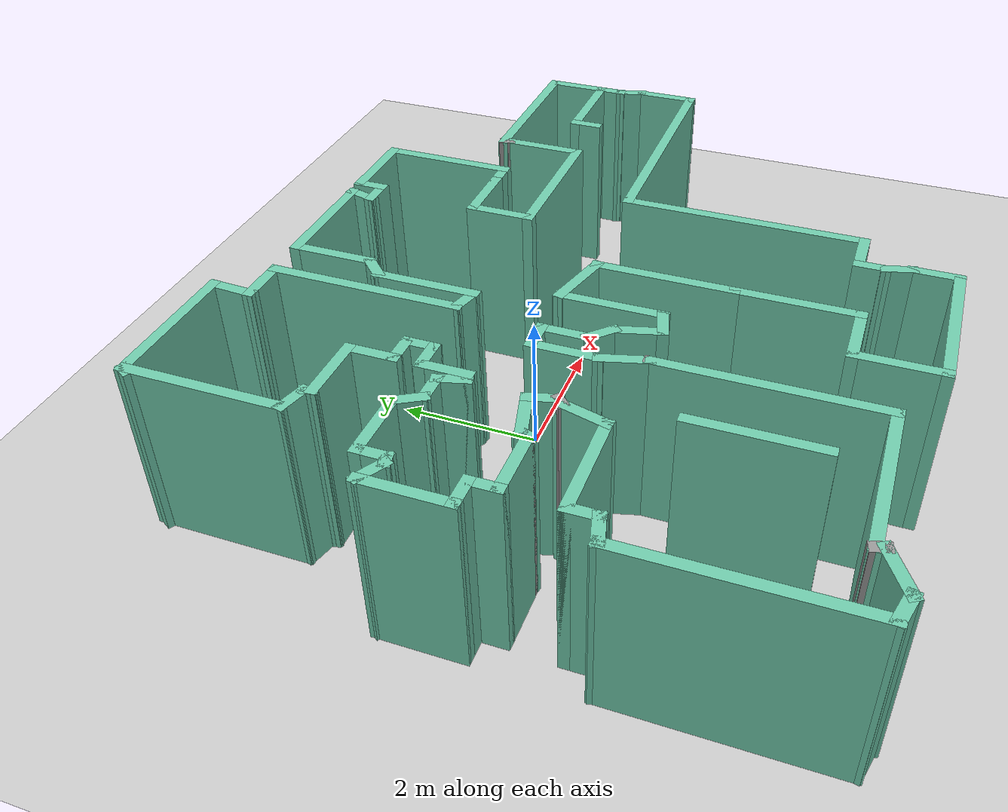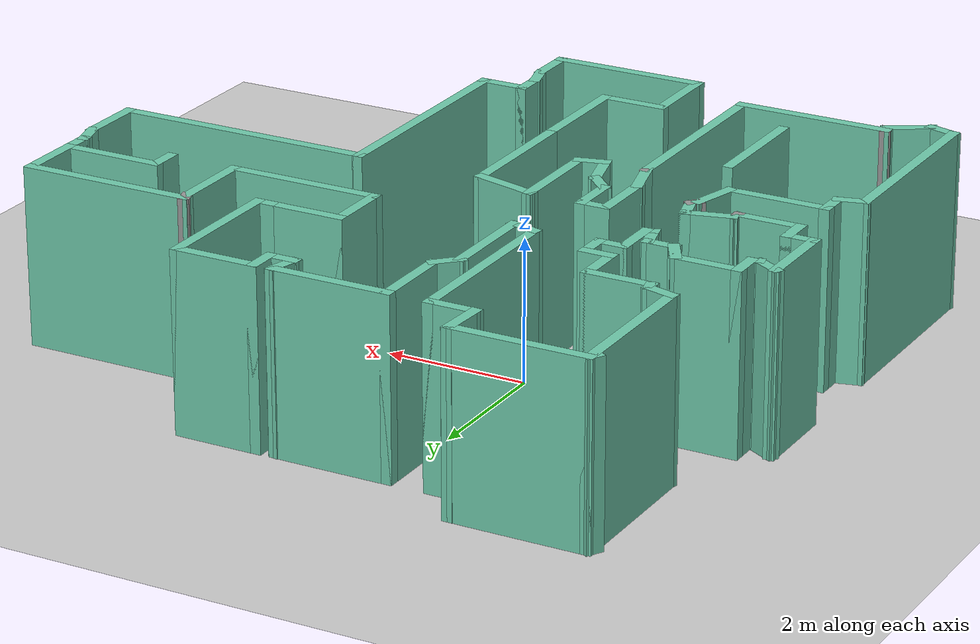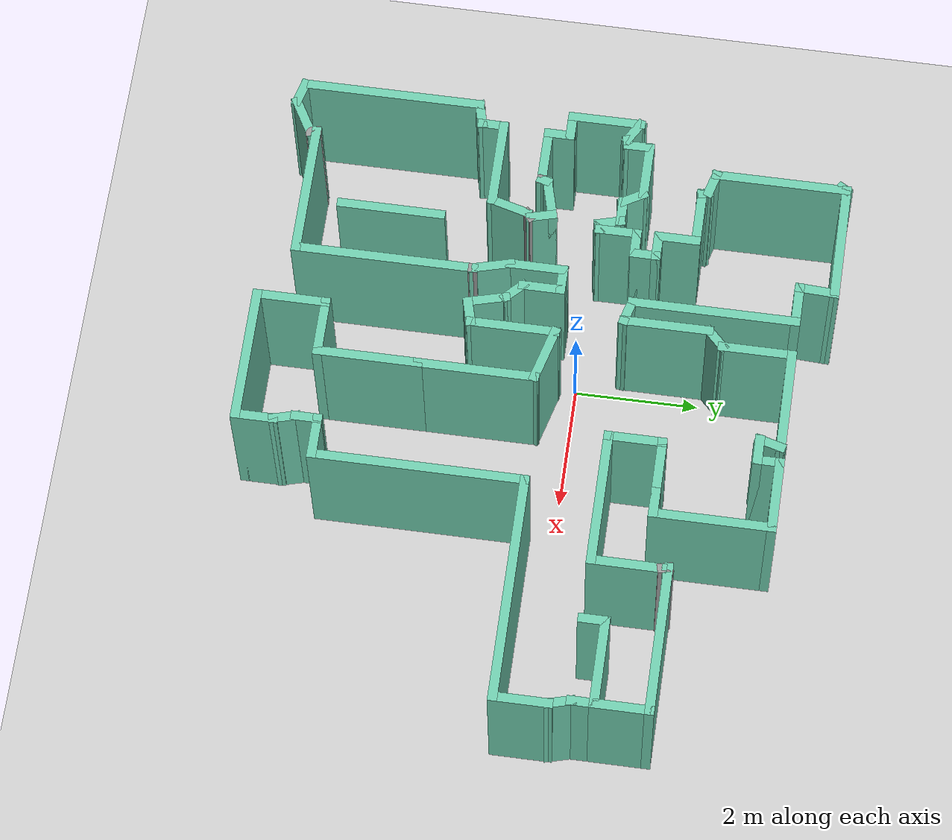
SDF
<sdf version="1.7">
 <world name="default">
  <model name="ground_plane">
   <static>1</static>
   <link name="link">
    <collision name="collision">
     <geometry><plane><normal>0 0 1</normal><size>100 100</size></plane></geometry>
     <surface>
      <contact><collide_bitmask>65535</collide_bitmask></contact>
      <friction><ode><mu>100</mu><mu2>50</mu2></ode></friction>
     </surface>
    </collision>
    <visual name="visual">
     <cast_shadows>0</cast_shadows>
     <geometry><plane><normal>0 0 1</normal><size>100 100</size></plane></geometry>
     <material>
      <script><uri>file://media/materials/scripts/gazebo.material</uri><name>Gazebo/Grey</name></script>
     </material>
    </visual>
   </link>
  </model>
  <model name="map_15">
   <pose>1.26568 -0.54548 0 0 -0 0</pose>
   <link name="Wall_0">
    <collision name="Wall_0_Collision">
     <geometry><box><size>2 0.15 2.5</size></box></geometry>
     <pose>0 0 1.25 0 -0 0</pose>
    </collision>
    <visual name="Wall_0_Visual">
     <pose>0 0 1.25 0 -0 0</pose>
     <geometry><box><size>2 0.15 2.5</size></box></geometry>
     <material>
      <script><uri>file://media/materials/scripts/gazebo.material</uri><name>Gazebo/Grey</name></script>
      <ambient>0.435294 0.796078 0.67451 1</ambient>
     </material>
     <meta><layer>0</layer></meta>
    </visual>
    <pose>-3.33293 4.52162 0 0 -0 3.14159</pose>
   </link>
   <link name="Wall_1">
    <collision name="Wall_1_Collision">
     <geometry><box><size>0.25 0.15 2.5</size></box></geometry>
     <pose>0 0 1.25 0 -0 0</pose>
    </collision>
    <visual name="Wall_1_Visual">
     <pose>0 0 1.25 0 -0 0</pose>
     <geometry><box><size>0.25 0.15 2.5</size></box></geometry>
     <material>
      <script><uri>file://media/materials/scripts/gazebo.material</uri><name>Gazebo/Grey</name></script>
      <ambient>0.435294 0.796078 0.67451 1</ambient>
     </material>
     <meta><layer>0</layer></meta>
    </visual>
    <pose>-4.28293 4.47832 0 0 -0 -2.0944</pose>
   </link>
   <link name="Wall_100">
    <collision name="Wall_100_Collision">
     <geometry><box><size>0.710657 0.15 2.5</size></box></geometry>
     <pose>0 0 1.25 0 -0 0</pose>
    </collision>
    <visual name="Wall_100_Visual">
     <pose>0 0 1.25 0 -0 0</pose>
     <geometry><box><size>0.710657 0.15 2.5</size></box></geometry>
     <material>
      <script><uri>file://media/materials/scripts/gazebo.material</uri><name>Gazebo/Grey</name></script>
      <ambient>0.435294 0.796078 0.67451 1</ambient>
     </material>
     <meta><layer>0</layer></meta>
    </visual>
    <pose>-2.42185 4.24164 0 0 -0 1.52113</pose>
   </link>
   <link name="Wall_102">
    <collision name="Wall_102_Collision">
     <geometry><box><size>1.5 0.15 2.5</size></box></geometry>
     <pose>0 0 1.25 0 -0 0</pose>
    </collision>
    <visual name="Wall_102_Visual">
     <pose>0 0 1.25 0 -0 0</pose>
     <geometry><box><size>1.5 0.15 2.5</size></box></geometry>
     <material>
      <script><uri>file://media/materials/scripts/gazebo.material</uri><name>Gazebo/Grey</name></script>
      <ambient>0.435294 0.796078 0.67451 1</ambient>
     </material>
     <meta><layer>0</layer></meta>
    </visual>
    <pose>4.25832 1.62708 0 0 -0 3.14159</pose>
   </link>
   <link name="Wall_103">
    <collision name="Wall_103_Collision">
     <geometry><box><size>0.5 0.15 2.5</size></box></geometry>
     <pose>0 0 1.25 0 -0 0</pose>
    </collision>
    <visual name="Wall_103_Visual">
     <pose>0 0 1.25 0 -0 0</pose>
     <geometry><box><size>0.5 0.15 2.5</size></box></geometry>
     <material>
      <script><uri>file://media/materials/scripts/gazebo.material</uri><name>Gazebo/Grey</name></script>
      <ambient>0.435294 0.796078 0.67451 1</ambient>
     </material>
     <meta><layer>0</layer></meta>
    </visual>
    <pose>3.58332 1.45208 0 0 -0 -1.5708</pose>
   </link>
   <link name="Wall_105">
    <collision name="Wall_105_Collision">
     <geometry><box><size>1.75 0.15 2.5</size></box></geometry>
     <pose>0 0 1.25 0 -0 0</pose>
    </collision>
    <visual name="Wall_105_Visual">
     <pose>0 0 1.25 0 -0 0</pose>
     <geometry><box><size>1.75 0.15 2.5</size></box></geometry>
     <material>
      <script><uri>file://media/materials/scripts/gazebo.material</uri><name>Gazebo/Grey</name></script>
      <ambient>0.435294 0.796078 0.67451 1</ambient>
     </material>
     <meta><layer>0</layer></meta>
    </visual>
    <pose>-2.96444 -2.66871 0 0 -0 -1.5708</pose>
   </link>
   <link name="Wall_14">
    <collision name="Wall_14_Collision">
     <geometry><box><size>0.5 0.15 2.5</size></box></geometry>
     <pose>0 0 1.25 0 -0 0</pose>
    </collision>
    <visual name="Wall_14_Visual">
     <pose>0 0 1.25 0 -0 0</pose>
     <geometry><box><size>0.5 0.15 2.5</size></box></geometry>
     <material>
      <script><uri>file://media/materials/scripts/gazebo.material</uri><name>Gazebo/Grey</name></script>
      <ambient>0.435294 0.796078 0.67451 1</ambient>
     </material>
     <meta><layer>0</layer></meta>
    </visual>
    <pose>-2.86898 1.63444 0 0 -0 0</pose>
   </link>
   <link name="Wall_17">
    <collision name="Wall_17_Collision">
     <geometry><box><size>0.5 0.15 2.5</size></box></geometry>
     <pose>0 0 1.25 0 -0 0</pose>
    </collision>
    <visual name="Wall_17_Visual">
     <pose>0 0 1.25 0 -0 0</pose>
     <geometry><box><size>0.5 0.15 2.5</size></box></geometry>
     <material>
      <script><uri>file://media/materials/scripts/gazebo.material</uri><name>Gazebo/Grey</name></script>
      <ambient>0.435294 0.796078 0.67451 1</ambient>
     </material>
     <meta><layer>0</layer></meta>
    </visual>
    <pose>-2.69398 1.45944 0 0 -0 -1.5708</pose>
   </link>
   <link name="Wall_18">
    <collision name="Wall_18_Collision">
     <geometry><box><size>0.5 0.15 2.5</size></box></geometry>
     <pose>0 0 1.25 0 -0 0</pose>
    </collision>
    <visual name="Wall_18_Visual">
     <pose>0 0 1.25 0 -0 0</pose>
     <geometry><box><size>0.5 0.15 2.5</size></box></geometry>
     <material>
      <script><uri>file://media/materials/scripts/gazebo.material</uri><name>Gazebo/Grey</name></script>
      <ambient>0.435294 0.796078 0.67451 1</ambient>
     </material>
     <meta><layer>0</layer></meta>
    </visual>
    <pose>-2.86898 1.28444 0 0 -0 3.14159</pose>
   </link>
   <link name="Wall_19">
    <collision name="Wall_19_Collision">
     <geometry><box><size>0.75 0.15 2.5</size></box></geometry>
     <pose>0 0 1.25 0 -0 0</pose>
    </collision>
    <visual name="Wall_19_Visual">
     <pose>0 0 1.25 0 -0 0</pose>
     <geometry><box><size>0.75 0.15 2.5</size></box></geometry>
     <material>
      <script><uri>file://media/materials/scripts/gazebo.material</uri><name>Gazebo/Grey</name></script>
      <ambient>0.435294 0.796078 0.67451 1</ambient>
     </material>
     <meta><layer>0</layer></meta>
    </visual>
    <pose>-3.04398 0.984442 0 0 -0 -1.5708</pose>
   </link>
   <link name="Wall_20">
    <collision name="Wall_20_Collision">
     <geometry><box><size>0.25 0.15 2.5</size></box></geometry>
     <pose>0 0 1.25 0 -0 0</pose>
    </collision>
    <visual name="Wall_20_Visual">
     <pose>0 0 1.25 0 -0 0</pose>
     <geometry><box><size>0.25 0.15 2.5</size></box></geometry>
     <material>
      <script><uri>file://media/materials/scripts/gazebo.material</uri><name>Gazebo/Grey</name></script>
      <ambient>0.435294 0.796078 0.67451 1</ambient>
     </material>
     <meta><layer>0</layer></meta>
    </visual>
    <pose>-3.09227 0.671501 0 0 -0 -2.87979</pose>
   </link>
   <link name="Wall_21">
    <collision name="Wall_21_Collision">
     <geometry><box><size>0.5 0.15 2.5</size></box></geometry>
     <pose>0 0 1.25 0 -0 0</pose>
    </collision>
    <visual name="Wall_21_Visual">
     <pose>0 0 1.25 0 -0 0</pose>
     <geometry><box><size>0.5 0.15 2.5</size></box></geometry>
     <material>
      <script><uri>file://media/materials/scripts/gazebo.material</uri><name>Gazebo/Grey</name></script>
      <ambient>0.435294 0.796078 0.67451 1</ambient>
     </material>
     <meta><layer>0</layer></meta>
    </visual>
    <pose>-3.18586 0.827597 0 0 -0 1.8326</pose>
   </link>
   <link name="Wall_22">
    <collision name="Wall_22_Collision">
     <geometry><box><size>0.5 0.15 2.5</size></box></geometry>
     <pose>0 0 1.25 0 -0 0</pose>
    </collision>
    <visual name="Wall_22_Visual">
     <pose>0 0 1.25 0 -0 0</pose>
     <geometry><box><size>0.5 0.15 2.5</size></box></geometry>
     <material>
      <script><uri>file://media/materials/scripts/gazebo.material</uri><name>Gazebo/Grey</name></script>
      <ambient>0.435294 0.796078 0.67451 1</ambient>
     </material>
     <meta><layer>0</layer></meta>
    </visual>
    <pose>-3.40616 0.996634 0 0 -0 3.14159</pose>
   </link>
   <link name="Wall_23">
    <collision name="Wall_23_Collision">
     <geometry><box><size>0.5 0.15 2.5</size></box></geometry>
     <pose>0 0 1.25 0 -0 0</pose>
    </collision>
    <visual name="Wall_23_Visual">
     <pose>0 0 1.25 0 -0 0</pose>
     <geometry><box><size>0.5 0.15 2.5</size></box></geometry>
     <material>
      <script><uri>file://media/materials/scripts/gazebo.material</uri><name>Gazebo/Grey</name></script>
      <ambient>0.435294 0.796078 0.67451 1</ambient>
     </material>
     <meta><layer>0</layer></meta>
    </visual>
    <pose>-3.66866 1.14819 0 0 -0 2.0944</pose>
   </link>
   <link name="Wall_24">
    <collision name="Wall_24_Collision">
     <geometry><box><size>1 0.15 2.5</size></box></geometry>
     <pose>0 0 1.25 0 -0 0</pose>
    </collision>
    <visual name="Wall_24_Visual">
     <pose>0 0 1.25 0 -0 0</pose>
     <geometry><box><size>1 0.15 2.5</size></box></geometry>
     <material>
      <script><uri>file://media/materials/scripts/gazebo.material</uri><name>Gazebo/Grey</name></script>
      <ambient>0.435294 0.796078 0.67451 1</ambient>
     </material>
     <meta><layer>0</layer></meta>
    </visual>
    <pose>-4.18116 1.29974 0 0 -0 3.14159</pose>
   </link>
   <link name="Wall_25">
    <collision name="Wall_25_Collision">
     <geometry><box><size>0.5 0.15 2.5</size></box></geometry>
     <pose>0 0 1.25 0 -0 0</pose>
    </collision>
    <visual name="Wall_25_Visual">
     <pose>0 0 1.25 0 -0 0</pose>
     <geometry><box><size>0.5 0.15 2.5</size></box></geometry>
     <material>
      <script><uri>file://media/materials/scripts/gazebo.material</uri><name>Gazebo/Grey</name></script>
      <ambient>0.435294 0.796078 0.67451 1</ambient>
     </material>
     <meta><layer>0</layer></meta>
    </visual>
    <pose>-4.60616 1.12474 0 0 -0 -1.5708</pose>
   </link>
   <link name="Wall_26">
    <collision name="Wall_26_Collision">
     <geometry><box><size>0.25 0.15 2.5</size></box></geometry>
     <pose>0 0 1.25 0 -0 0</pose>
    </collision>
    <visual name="Wall_26_Visual">
     <pose>0 0 1.25 0 -0 0</pose>
     <geometry><box><size>0.25 0.15 2.5</size></box></geometry>
     <material>
      <script><uri>file://media/materials/scripts/gazebo.material</uri><name>Gazebo/Grey</name></script>
      <ambient>0.435294 0.796078 0.67451 1</ambient>
     </material>
     <meta><layer>0</layer></meta>
    </visual>
    <pose>-4.65445 0.936802 0 0 -0 -2.87979</pose>
   </link>
   <link name="Wall_27">
    <collision name="Wall_27_Collision">
     <geometry><box><size>0.5 0.15 2.5</size></box></geometry>
     <pose>0 0 1.25 0 -0 0</pose>
    </collision>
    <visual name="Wall_27_Visual">
     <pose>0 0 1.25 0 -0 0</pose>
     <geometry><box><size>0.5 0.15 2.5</size></box></geometry>
     <material>
      <script><uri>file://media/materials/scripts/gazebo.material</uri><name>Gazebo/Grey</name></script>
      <ambient>0.435294 0.796078 0.67451 1</ambient>
     </material>
     <meta><layer>0</layer></meta>
    </visual>
    <pose>-4.8543 1.01136 0 0 -0 2.61799</pose>
   </link>
   <link name="Wall_28">
    <collision name="Wall_28_Collision">
     <geometry><box><size>1.25 0.15 2.5</size></box></geometry>
     <pose>0 0 1.25 0 -0 0</pose>
    </collision>
    <visual name="Wall_28_Visual">
     <pose>0 0 1.25 0 -0 0</pose>
     <geometry><box><size>1.25 0.15 2.5</size></box></geometry>
     <material>
      <script><uri>file://media/materials/scripts/gazebo.material</uri><name>Gazebo/Grey</name></script>
      <ambient>0.435294 0.796078 0.67451 1</ambient>
     </material>
     <meta><layer>0</layer></meta>
    </visual>
    <pose>-5.00586 0.548861 0 0 -0 -1.5708</pose>
   </link>
   <link name="Wall_29">
    <collision name="Wall_29_Collision">
     <geometry><box><size>0.5 0.15 2.5</size></box></geometry>
     <pose>0 0 1.25 0 -0 0</pose>
    </collision>
    <visual name="Wall_29_Visual">
     <pose>0 0 1.25 0 -0 0</pose>
     <geometry><box><size>0.5 0.15 2.5</size></box></geometry>
     <material>
      <script><uri>file://media/materials/scripts/gazebo.material</uri><name>Gazebo/Grey</name></script>
      <ambient>0.435294 0.796078 0.67451 1</ambient>
     </material>
     <meta><layer>0</layer></meta>
    </visual>
    <pose>-4.83086 -0.001139 0 0 -0 0</pose>
   </link>
   <link name="Wall_30">
    <collision name="Wall_30_Collision">
     <geometry><box><size>0.5 0.15 2.5</size></box></geometry>
     <pose>0 0 1.25 0 -0 0</pose>
    </collision>
    <visual name="Wall_30_Visual">
     <pose>0 0 1.25 0 -0 0</pose>
     <geometry><box><size>0.5 0.15 2.5</size></box></geometry>
     <material>
      <script><uri>file://media/materials/scripts/gazebo.material</uri><name>Gazebo/Grey</name></script>
      <ambient>0.435294 0.796078 0.67451 1</ambient>
     </material>
     <meta><layer>0</layer></meta>
    </visual>
    <pose>-4.65586 -0.176139 0 0 -0 -1.5708</pose>
   </link>
   <link name="Wall_31">
    <collision name="Wall_31_Collision">
     <geometry><box><size>1 0.15 2.5</size></box></geometry>
     <pose>0 0 1.25 0 -0 0</pose>
    </collision>
    <visual name="Wall_31_Visual">
     <pose>0 0 1.25 0 -0 0</pose>
     <geometry><box><size>1 0.15 2.5</size></box></geometry>
     <material>
      <script><uri>file://media/materials/scripts/gazebo.material</uri><name>Gazebo/Grey</name></script>
      <ambient>0.435294 0.796078 0.67451 1</ambient>
     </material>
     <meta><layer>0</layer></meta>
    </visual>
    <pose>-4.23086 -0.351139 0 0 -0 0</pose>
   </link>
   <link name="Wall_32">
    <collision name="Wall_32_Collision">
     <geometry><box><size>0.15 0.15 2.5</size></box></geometry>
     <pose>0 0 1.25 0 -0 0</pose>
    </collision>
    <visual name="Wall_32_Visual">
     <pose>0 0 1.25 0 -0 0</pose>
     <geometry><box><size>0.15 0.15 2.5</size></box></geometry>
     <material>
      <script><uri>file://media/materials/scripts/gazebo.material</uri><name>Gazebo/Grey</name></script>
      <ambient>1 1 1 1</ambient>
     </material>
     <meta><layer>0</layer></meta>
    </visual>
    <pose>-3.80586 -0.351139 0 0 -0 0</pose>
   </link>
   <link name="Wall_37">
    <collision name="Wall_37_Collision">
     <geometry><box><size>0.15 0.15 2.5</size></box></geometry>
     <pose>0 0 1.25 0 -0 0</pose>
    </collision>
    <visual name="Wall_37_Visual">
     <pose>0 0 1.25 0 -0 0</pose>
     <geometry><box><size>0.15 0.15 2.5</size></box></geometry>
     <material>
      <script><uri>file://media/materials/scripts/gazebo.material</uri><name>Gazebo/Grey</name></script>
      <ambient>0.435294 0.796078 0.67451 1</ambient>
     </material>
     <meta><layer>0</layer></meta>
    </visual>
    <pose>-3.80586 -0.351139 0 0 -0 0</pose>
   </link>
   <link name="Wall_38">
    <collision name="Wall_38_Collision">
     <geometry><box><size>0.25 0.15 2.5</size></box></geometry>
     <pose>0 0 1.25 0 -0 0</pose>
    </collision>
    <visual name="Wall_38_Visual">
     <pose>0 0 1.25 0 -0 0</pose>
     <geometry><box><size>0.25 0.15 2.5</size></box></geometry>
     <material>
      <script><uri>file://media/materials/scripts/gazebo.material</uri><name>Gazebo/Grey</name></script>
      <ambient>0.435294 0.796078 0.67451 1</ambient>
     </material>
     <meta><layer>0</layer></meta>
    </visual>
    <pose>-3.79292 -0.302843 0 0 -0 1.309</pose>
   </link>
   <link name="Wall_39">
    <collision name="Wall_39_Collision">
     <geometry><box><size>0.75 0.15 2.5</size></box></geometry>
     <pose>0 0 1.25 0 -0 0</pose>
    </collision>
    <visual name="Wall_39_Visual">
     <pose>0 0 1.25 0 -0 0</pose>
     <geometry><box><size>0.75 0.15 2.5</size></box></geometry>
     <material>
      <script><uri>file://media/materials/scripts/gazebo.material</uri><name>Gazebo/Grey</name></script>
      <ambient>0.435294 0.796078 0.67451 1</ambient>
     </material>
     <meta><layer>0</layer></meta>
    </visual>
    <pose>-3.4902 -0.176901 0 0 -0 0.261799</pose>
   </link>
   <link name="Wall_4">
    <collision name="Wall_4_Collision">
     <geometry><box><size>2.25 0.15 2.5</size></box></geometry>
     <pose>0 0 1.25 0 -0 0</pose>
    </collision>
    <visual name="Wall_4_Visual">
     <pose>0 0 1.25 0 -0 0</pose>
     <geometry><box><size>2.25 0.15 2.5</size></box></geometry>
     <material>
      <script><uri>file://media/materials/scripts/gazebo.material</uri><name>Gazebo/Grey</name></script>
      <ambient>0.435294 0.796078 0.67451 1</ambient>
     </material>
     <meta><layer>0</layer></meta>
    </visual>
    <pose>-4.25793 3.47162 0 0 -0 -1.5708</pose>
   </link>
   <link name="Wall_40">
    <collision name="Wall_40_Collision">
     <geometry><box><size>0.5 0.15 2.5</size></box></geometry>
     <pose>0 0 1.25 0 -0 0</pose>
    </collision>
    <visual name="Wall_40_Visual">
     <pose>0 0 1.25 0 -0 0</pose>
     <geometry><box><size>0.5 0.15 2.5</size></box></geometry>
     <material>
      <script><uri>file://media/materials/scripts/gazebo.material</uri><name>Gazebo/Grey</name></script>
      <ambient>0.435294 0.796078 0.67451 1</ambient>
     </material>
     <meta><layer>0</layer></meta>
    </visual>
    <pose>-3.15513 -0.268292 0 0 -0 -1.309</pose>
   </link>
   <link name="Wall_41">
    <collision name="Wall_41_Collision">
     <geometry><box><size>0.25 0.15 2.5</size></box></geometry>
     <pose>0 0 1.25 0 -0 0</pose>
    </collision>
    <visual name="Wall_41_Visual">
     <pose>0 0 1.25 0 -0 0</pose>
     <geometry><box><size>0.25 0.15 2.5</size></box></geometry>
     <material>
      <script><uri>file://media/materials/scripts/gazebo.material</uri><name>Gazebo/Grey</name></script>
      <ambient>1 1 1 1</ambient>
     </material>
     <meta><layer>0</layer></meta>
    </visual>
    <pose>-3.14519 -0.472684 0 0 -0 -2.35619</pose>
   </link>
   <link name="Wall_42">
    <collision name="Wall_42_Collision">
     <geometry><box><size>0.75 0.15 2.5</size></box></geometry>
     <pose>0 0 1.25 0 -0 0</pose>
    </collision>
    <visual name="Wall_42_Visual">
     <pose>0 0 1.25 0 -0 0</pose>
     <geometry><box><size>0.75 0.15 2.5</size></box></geometry>
     <material>
      <script><uri>file://media/materials/scripts/gazebo.material</uri><name>Gazebo/Grey</name></script>
      <ambient>0.435294 0.796078 0.67451 1</ambient>
     </material>
     <meta><layer>0</layer></meta>
    </visual>
    <pose>-3.25819 -0.797817 0 0 -0 -1.8326</pose>
   </link>
   <link name="Wall_43">
    <collision name="Wall_43_Collision">
     <geometry><box><size>1.5 0.15 2.5</size></box></geometry>
     <pose>0 0 1.25 0 -0 0</pose>
    </collision>
    <visual name="Wall_43_Visual">
     <pose>0 0 1.25 0 -0 0</pose>
     <geometry><box><size>1.5 0.15 2.5</size></box></geometry>
     <material>
      <script><uri>file://media/materials/scripts/gazebo.material</uri><name>Gazebo/Grey</name></script>
      <ambient>0.435294 0.796078 0.67451 1</ambient>
     </material>
     <meta><layer>0</layer></meta>
    </visual>
    <pose>-4.01084 -1.0876 0 0 -0 3.14159</pose>
   </link>
   <link name="Wall_44">
    <collision name="Wall_44_Collision">
     <geometry><box><size>0.5 0.15 2.5</size></box></geometry>
     <pose>0 0 1.25 0 -0 0</pose>
    </collision>
    <visual name="Wall_44_Visual">
     <pose>0 0 1.25 0 -0 0</pose>
     <geometry><box><size>0.5 0.15 2.5</size></box></geometry>
     <material>
      <script><uri>file://media/materials/scripts/gazebo.material</uri><name>Gazebo/Grey</name></script>
      <ambient>0.435294 0.796078 0.67451 1</ambient>
     </material>
     <meta><layer>0</layer></meta>
    </visual>
    <pose>-4.68584 -1.26259 0 0 -0 -1.5708</pose>
   </link>
   <link name="Wall_45">
    <collision name="Wall_45_Collision">
     <geometry><box><size>0.5 0.15 2.5</size></box></geometry>
     <pose>0 0 1.25 0 -0 0</pose>
    </collision>
    <visual name="Wall_45_Visual">
     <pose>0 0 1.25 0 -0 0</pose>
     <geometry><box><size>0.5 0.15 2.5</size></box></geometry>
     <material>
      <script><uri>file://media/materials/scripts/gazebo.material</uri><name>Gazebo/Grey</name></script>
      <ambient>0.435294 0.796078 0.67451 1</ambient>
     </material>
     <meta><layer>0</layer></meta>
    </visual>
    <pose>-4.85487 -1.48289 0 0 -0 -2.87979</pose>
   </link>
   <link name="Wall_46">
    <collision name="Wall_46_Collision">
     <geometry><box><size>3 0.15 2.5</size></box></geometry>
     <pose>0 0 1.25 0 -0 0</pose>
    </collision>
    <visual name="Wall_46_Visual">
     <pose>0 0 1.25 0 -0 0</pose>
     <geometry><box><size>3 0.15 2.5</size></box></geometry>
     <material>
      <script><uri>file://media/materials/scripts/gazebo.material</uri><name>Gazebo/Grey</name></script>
      <ambient>0.435294 0.796078 0.67451 1</ambient>
     </material>
     <meta><layer>0</layer></meta>
    </visual>
    <pose>-5.02391 -2.95318 0 0 -0 -1.5708</pose>
   </link>
   <link name="Wall_47">
    <collision name="Wall_47_Collision">
     <geometry><box><size>0.5 0.15 2.5</size></box></geometry>
     <pose>0 0 1.25 0 -0 0</pose>
    </collision>
    <visual name="Wall_47_Visual">
     <pose>0 0 1.25 0 -0 0</pose>
     <geometry><box><size>0.5 0.15 2.5</size></box></geometry>
     <material>
      <script><uri>file://media/materials/scripts/gazebo.material</uri><name>Gazebo/Grey</name></script>
      <ambient>0.435294 0.796078 0.67451 1</ambient>
     </material>
     <meta><layer>0</layer></meta>
    </visual>
    <pose>-4.85487 -4.42347 0 0 -0 -0.261799</pose>
   </link>
   <link name="Wall_48">
    <collision name="Wall_48_Collision">
     <geometry><box><size>0.75 0.15 2.5</size></box></geometry>
     <pose>0 0 1.25 0 -0 0</pose>
    </collision>
    <visual name="Wall_48_Visual">
     <pose>0 0 1.25 0 -0 0</pose>
     <geometry><box><size>0.75 0.15 2.5</size></box></geometry>
     <material>
      <script><uri>file://media/materials/scripts/gazebo.material</uri><name>Gazebo/Grey</name></script>
      <ambient>0.435294 0.796078 0.67451 1</ambient>
     </material>
     <meta><layer>0</layer></meta>
    </visual>
    <pose>-4.42603 -4.31877 0 0 -0 0.523599</pose>
   </link>
   <link name="Wall_49">
    <collision name="Wall_49_Collision">
     <geometry><box><size>0.25 0.15 2.5</size></box></geometry>
     <pose>0 0 1.25 0 -0 0</pose>
    </collision>
    <visual name="Wall_49_Visual">
     <pose>0 0 1.25 0 -0 0</pose>
     <geometry><box><size>0.25 0.15 2.5</size></box></geometry>
     <material>
      <script><uri>file://media/materials/scripts/gazebo.material</uri><name>Gazebo/Grey</name></script>
      <ambient>1 1 1 1</ambient>
     </material>
     <meta><layer>0</layer></meta>
    </visual>
    <pose>-4.17916 -4.12047 0 0 -0 1.8326</pose>
   </link>
   <link name="Wall_5">
    <collision name="Wall_5_Collision">
     <geometry><box><size>0.5 0.15 2.5</size></box></geometry>
     <pose>0 0 1.25 0 -0 0</pose>
    </collision>
    <visual name="Wall_5_Visual">
     <pose>0 0 1.25 0 -0 0</pose>
     <geometry><box><size>0.5 0.15 2.5</size></box></geometry>
     <material>
      <script><uri>file://media/materials/scripts/gazebo.material</uri><name>Gazebo/Grey</name></script>
      <ambient>0.435294 0.796078 0.67451 1</ambient>
     </material>
     <meta><layer>0</layer></meta>
    </visual>
    <pose>-4.0889 2.37633 0 0 -0 -0.261799</pose>
   </link>
   <link name="Wall_50">
    <collision name="Wall_50_Collision">
     <geometry><box><size>2.25 0.15 2.5</size></box></geometry>
     <pose>0 0 1.25 0 -0 0</pose>
    </collision>
    <visual name="Wall_50_Visual">
     <pose>0 0 1.25 0 -0 0</pose>
     <geometry><box><size>2.25 0.15 2.5</size></box></geometry>
     <material>
      <script><uri>file://media/materials/scripts/gazebo.material</uri><name>Gazebo/Grey</name></script>
      <ambient>0.435294 0.796078 0.67451 1</ambient>
     </material>
     <meta><layer>0</layer></meta>
    </visual>
    <pose>-3.1421 -4.07218 0 0 -0 0</pose>
   </link>
   <link name="Wall_51">
    <collision name="Wall_51_Collision">
     <geometry><box><size>3 0.15 2.5</size></box></geometry>
     <pose>0 0 1.25 0 -0 0</pose>
    </collision>
    <visual name="Wall_51_Visual">
     <pose>0 0 1.25 0 -0 0</pose>
     <geometry><box><size>3 0.15 2.5</size></box></geometry>
     <material>
      <script><uri>file://media/materials/scripts/gazebo.material</uri><name>Gazebo/Grey</name></script>
      <ambient>0.435294 0.796078 0.67451 1</ambient>
     </material>
     <meta><layer>0</layer></meta>
    </visual>
    <pose>-2.0921 -2.64718 0 0 -0 1.5708</pose>
   </link>
   <link name="Wall_52">
    <collision name="Wall_52_Collision">
     <geometry><box><size>0.15 0.15 2.5</size></box></geometry>
     <pose>0 0 1.25 0 -0 0</pose>
    </collision>
    <visual name="Wall_52_Visual">
     <pose>0 0 1.25 0 -0 0</pose>
     <geometry><box><size>0.15 0.15 2.5</size></box></geometry>
     <material>
      <script><uri>file://media/materials/scripts/gazebo.material</uri><name>Gazebo/Grey</name></script>
      <ambient>1 1 1 1</ambient>
     </material>
     <meta><layer>0</layer></meta>
    </visual>
    <pose>-2.0921 -1.22218 0 0 -0 0</pose>
   </link>
   <link name="Wall_53">
    <collision name="Wall_53_Collision">
     <geometry><box><size>0.75 0.15 2.5</size></box></geometry>
     <pose>0 0 1.25 0 -0 0</pose>
    </collision>
    <visual name="Wall_53_Visual">
     <pose>0 0 1.25 0 -0 0</pose>
     <geometry><box><size>0.75 0.15 2.5</size></box></geometry>
     <material>
      <script><uri>file://media/materials/scripts/gazebo.material</uri><name>Gazebo/Grey</name></script>
      <ambient>0.435294 0.796078 0.67451 1</ambient>
     </material>
     <meta><layer>0</layer></meta>
    </visual>
    <pose>-2.16975 -0.932398 0 0 -0 1.8326</pose>
   </link>
   <link name="Wall_54">
    <collision name="Wall_54_Collision">
     <geometry><box><size>1 0.15 2.5</size></box></geometry>
     <pose>0 0 1.25 0 -0 0</pose>
    </collision>
    <visual name="Wall_54_Visual">
     <pose>0 0 1.25 0 -0 0</pose>
     <geometry><box><size>1 0.15 2.5</size></box></geometry>
     <material>
      <script><uri>file://media/materials/scripts/gazebo.material</uri><name>Gazebo/Grey</name></script>
      <ambient>0.435294 0.796078 0.67451 1</ambient>
     </material>
     <meta><layer>0</layer></meta>
    </visual>
    <pose>-2.24739 -0.21762 0 0 -0 1.5708</pose>
   </link>
   <link name="Wall_55">
    <collision name="Wall_55_Collision">
     <geometry><box><size>0.5 0.15 2.5</size></box></geometry>
     <pose>0 0 1.25 0 -0 0</pose>
    </collision>
    <visual name="Wall_55_Visual">
     <pose>0 0 1.25 0 -0 0</pose>
     <geometry><box><size>0.5 0.15 2.5</size></box></geometry>
     <material>
      <script><uri>file://media/materials/scripts/gazebo.material</uri><name>Gazebo/Grey</name></script>
      <ambient>0.435294 0.796078 0.67451 1</ambient>
     </material>
     <meta><layer>0</layer></meta>
    </visual>
    <pose>-2.07239 0.20738 0 0 -0 0</pose>
   </link>
   <link name="Wall_56">
    <collision name="Wall_56_Collision">
     <geometry><box><size>0.75 0.15 2.5</size></box></geometry>
     <pose>0 0 1.25 0 -0 0</pose>
    </collision>
    <visual name="Wall_56_Visual">
     <pose>0 0 1.25 0 -0 0</pose>
     <geometry><box><size>0.75 0.15 2.5</size></box></geometry>
     <material>
      <script><uri>file://media/materials/scripts/gazebo.material</uri><name>Gazebo/Grey</name></script>
      <ambient>0.435294 0.796078 0.67451 1</ambient>
     </material>
     <meta><layer>0</layer></meta>
    </visual>
    <pose>-1.89739 -0.09262 0 0 -0 -1.5708</pose>
   </link>
   <link name="Wall_57">
    <collision name="Wall_57_Collision">
     <geometry><box><size>0.5 0.15 2.5</size></box></geometry>
     <pose>0 0 1.25 0 -0 0</pose>
    </collision>
    <visual name="Wall_57_Visual">
     <pose>0 0 1.25 0 -0 0</pose>
     <geometry><box><size>0.5 0.15 2.5</size></box></geometry>
     <material>
      <script><uri>file://media/materials/scripts/gazebo.material</uri><name>Gazebo/Grey</name></script>
      <ambient>0.435294 0.796078 0.67451 1</ambient>
     </material>
     <meta><layer>0</layer></meta>
    </visual>
    <pose>-1.77365 -0.516364 0 0 -0 -0.785398</pose>
   </link>
   <link name="Wall_58">
    <collision name="Wall_58_Collision">
     <geometry><box><size>0.75 0.15 2.5</size></box></geometry>
     <pose>0 0 1.25 0 -0 0</pose>
    </collision>
    <visual name="Wall_58_Visual">
     <pose>0 0 1.25 0 -0 0</pose>
     <geometry><box><size>0.75 0.15 2.5</size></box></geometry>
     <material>
      <script><uri>file://media/materials/scripts/gazebo.material</uri><name>Gazebo/Grey</name></script>
      <ambient>0.435294 0.796078 0.67451 1</ambient>
     </material>
     <meta><layer>0</layer></meta>
    </visual>
    <pose>-1.57226 -0.929886 0 0 -0 -1.309</pose>
   </link>
   <link name="Wall_59">
    <collision name="Wall_59_Collision">
     <geometry><box><size>0.5 0.15 2.5</size></box></geometry>
     <pose>0 0 1.25 0 -0 0</pose>
    </collision>
    <visual name="Wall_59_Visual">
     <pose>0 0 1.25 0 -0 0</pose>
     <geometry><box><size>0.5 0.15 2.5</size></box></geometry>
     <material>
      <script><uri>file://media/materials/scripts/gazebo.material</uri><name>Gazebo/Grey</name></script>
      <ambient>0.435294 0.796078 0.67451 1</ambient>
     </material>
     <meta><layer>0</layer></meta>
    </visual>
    <pose>-1.32558 -1.17437 0 0 -0 0.261799</pose>
   </link>
   <link name="Wall_6">
    <collision name="Wall_6_Collision">
     <geometry><box><size>0.25 0.15 2.5</size></box></geometry>
     <pose>0 0 1.25 0 -0 0</pose>
    </collision>
    <visual name="Wall_6_Visual">
     <pose>0 0 1.25 0 -0 0</pose>
     <geometry><box><size>0.25 0.15 2.5</size></box></geometry>
     <material>
      <script><uri>file://media/materials/scripts/gazebo.material</uri><name>Gazebo/Grey</name></script>
      <ambient>0.435294 0.796078 0.67451 1</ambient>
     </material>
     <meta><layer>0</layer></meta>
    </visual>
    <pose>-3.90692 2.28274 0 0 -0 -1.309</pose>
   </link>
   <link name="Wall_60">
    <collision name="Wall_60_Collision">
     <geometry><box><size>1.5 0.15 2.5</size></box></geometry>
     <pose>0 0 1.25 0 -0 0</pose>
    </collision>
    <visual name="Wall_60_Visual">
     <pose>0 0 1.25 0 -0 0</pose>
     <geometry><box><size>1.5 0.15 2.5</size></box></geometry>
     <material>
      <script><uri>file://media/materials/scripts/gazebo.material</uri><name>Gazebo/Grey</name></script>
      <ambient>0.435294 0.796078 0.67451 1</ambient>
     </material>
     <meta><layer>0</layer></meta>
    </visual>
    <pose>-1.15654 -0.454077 0 0 -0 1.5708</pose>
   </link>
   <link name="Wall_61">
    <collision name="Wall_61_Collision">
     <geometry><box><size>1 0.15 2.5</size></box></geometry>
     <pose>0 0 1.25 0 -0 0</pose>
    </collision>
    <visual name="Wall_61_Visual">
     <pose>0 0 1.25 0 -0 0</pose>
     <geometry><box><size>1 0.15 2.5</size></box></geometry>
     <material>
      <script><uri>file://media/materials/scripts/gazebo.material</uri><name>Gazebo/Grey</name></script>
      <ambient>0.435294 0.796078 0.67451 1</ambient>
     </material>
     <meta><layer>0</layer></meta>
    </visual>
    <pose>-0.746022 0.110925 0 0 -0 -0.261799</pose>
   </link>
   <link name="Wall_62">
    <collision name="Wall_62_Collision">
     <geometry><box><size>2 0.15 2.5</size></box></geometry>
     <pose>0 0 1.25 0 -0 0</pose>
    </collision>
    <visual name="Wall_62_Visual">
     <pose>0 0 1.25 0 -0 0</pose>
     <geometry><box><size>2 0.15 2.5</size></box></geometry>
     <material>
      <script><uri>file://media/materials/scripts/gazebo.material</uri><name>Gazebo/Grey</name></script>
      <ambient>0.435294 0.796078 0.67451 1</ambient>
     </material>
     <meta><layer>0</layer></meta>
    </visual>
    <pose>-0.335504 -0.924073 0 0 -0 -1.5708</pose>
   </link>
   <link name="Wall_63">
    <collision name="Wall_63_Collision">
     <geometry><box><size>1.75 0.15 2.5</size></box></geometry>
     <pose>0 0 1.25 0 -0 0</pose>
    </collision>
    <visual name="Wall_63_Visual">
     <pose>0 0 1.25 0 -0 0</pose>
     <geometry><box><size>1.75 0.15 2.5</size></box></geometry>
     <material>
      <script><uri>file://media/materials/scripts/gazebo.material</uri><name>Gazebo/Grey</name></script>
      <ambient>0.435294 0.796078 0.67451 1</ambient>
     </material>
     <meta><layer>0</layer></meta>
    </visual>
    <pose>-0.335504 -2.64907 0 0 -0 -1.5708</pose>
   </link>
   <link name="Wall_64">
    <collision name="Wall_64_Collision">
     <geometry><box><size>1 0.15 2.5</size></box></geometry>
     <pose>0 0 1.25 0 -0 0</pose>
    </collision>
    <visual name="Wall_64_Visual">
     <pose>0 0 1.25 0 -0 0</pose>
     <geometry><box><size>1 0.15 2.5</size></box></geometry>
     <material>
      <script><uri>file://media/materials/scripts/gazebo.material</uri><name>Gazebo/Grey</name></script>
      <ambient>0.435294 0.796078 0.67451 1</ambient>
     </material>
     <meta><layer>0</layer></meta>
    </visual>
    <pose>-0.760504 -3.44907 0 0 -0 3.14159</pose>
   </link>
   <link name="Wall_65">
    <collision name="Wall_65_Collision">
     <geometry><box><size>1.25 0.15 2.5</size></box></geometry>
     <pose>0 0 1.25 0 -0 0</pose>
    </collision>
    <visual name="Wall_65_Visual">
     <pose>0 0 1.25 0 -0 0</pose>
     <geometry><box><size>1.25 0.15 2.5</size></box></geometry>
     <material>
      <script><uri>file://media/materials/scripts/gazebo.material</uri><name>Gazebo/Grey</name></script>
      <ambient>0.435294 0.796078 0.67451 1</ambient>
     </material>
     <meta><layer>0</layer></meta>
    </visual>
    <pose>-1.1855 -3.99907 0 0 -0 -1.5708</pose>
   </link>
   <link name="Wall_66">
    <collision name="Wall_66_Collision">
     <geometry><box><size>2.25 0.15 2.5</size></box></geometry>
     <pose>0 0 1.25 0 -0 0</pose>
    </collision>
    <visual name="Wall_66_Visual">
     <pose>0 0 1.25 0 -0 0</pose>
     <geometry><box><size>2.25 0.15 2.5</size></box></geometry>
     <material>
      <script><uri>file://media/materials/scripts/gazebo.material</uri><name>Gazebo/Grey</name></script>
      <ambient>0.435294 0.796078 0.67451 1</ambient>
     </material>
     <meta><layer>0</layer></meta>
    </visual>
    <pose>-0.135504 -4.54907 0 0 -0 0</pose>
   </link>
   <link name="Wall_67">
    <collision name="Wall_67_Collision">
     <geometry><box><size>0.75 0.15 2.5</size></box></geometry>
     <pose>0 0 1.25 0 -0 0</pose>
    </collision>
    <visual name="Wall_67_Visual">
     <pose>0 0 1.25 0 -0 0</pose>
     <geometry><box><size>0.75 0.15 2.5</size></box></geometry>
     <material>
      <script><uri>file://media/materials/scripts/gazebo.material</uri><name>Gazebo/Grey</name></script>
      <ambient>0.435294 0.796078 0.67451 1</ambient>
     </material>
     <meta><layer>0</layer></meta>
    </visual>
    <pose>0.914496 -4.24907 0 0 -0 1.5708</pose>
   </link>
   <link name="Wall_68">
    <collision name="Wall_68_Collision">
     <geometry><box><size>0.5 0.15 2.5</size></box></geometry>
     <pose>0 0 1.25 0 -0 0</pose>
    </collision>
    <visual name="Wall_68_Visual">
     <pose>0 0 1.25 0 -0 0</pose>
     <geometry><box><size>0.5 0.15 2.5</size></box></geometry>
     <material>
      <script><uri>file://media/materials/scripts/gazebo.material</uri><name>Gazebo/Grey</name></script>
      <ambient>0.435294 0.796078 0.67451 1</ambient>
     </material>
     <meta><layer>0</layer></meta>
    </visual>
    <pose>0.869203 -3.78004 0 0 -0 1.8326</pose>
   </link>
   <link name="Wall_69">
    <collision name="Wall_69_Collision">
     <geometry><box><size>0.5 0.15 2.5</size></box></geometry>
     <pose>0 0 1.25 0 -0 0</pose>
    </collision>
    <visual name="Wall_69_Visual">
     <pose>0 0 1.25 0 -0 0</pose>
     <geometry><box><size>0.5 0.15 2.5</size></box></geometry>
     <material>
      <script><uri>file://media/materials/scripts/gazebo.material</uri><name>Gazebo/Grey</name></script>
      <ambient>0.435294 0.796078 0.67451 1</ambient>
     </material>
     <meta><layer>0</layer></meta>
    </visual>
    <pose>0.823909 -3.436 0 0 -0 1.5708</pose>
   </link>
   <link name="Wall_7">
    <collision name="Wall_7_Collision">
     <geometry><box><size>1 0.15 2.5</size></box></geometry>
     <pose>0 0 1.25 0 -0 0</pose>
    </collision>
    <visual name="Wall_7_Visual">
     <pose>0 0 1.25 0 -0 0</pose>
     <geometry><box><size>1 0.15 2.5</size></box></geometry>
     <material>
      <script><uri>file://media/materials/scripts/gazebo.material</uri><name>Gazebo/Grey</name></script>
      <ambient>0.435294 0.796078 0.67451 1</ambient>
     </material>
     <meta><layer>0</layer></meta>
    </visual>
    <pose>-3.46898 2.23444 0 0 -0 0</pose>
   </link>
   <link name="Wall_70">
    <collision name="Wall_70_Collision">
     <geometry><box><size>0.75 0.15 2.5</size></box></geometry>
     <pose>0 0 1.25 0 -0 0</pose>
    </collision>
    <visual name="Wall_70_Visual">
     <pose>0 0 1.25 0 -0 0</pose>
     <geometry><box><size>0.75 0.15 2.5</size></box></geometry>
     <material>
      <script><uri>file://media/materials/scripts/gazebo.material</uri><name>Gazebo/Grey</name></script>
      <ambient>0.435294 0.796078 0.67451 1</ambient>
     </material>
     <meta><layer>0</layer></meta>
    </visual>
    <pose>1.12391 -3.261 0 0 -0 0</pose>
   </link>
   <link name="Wall_71">
    <collision name="Wall_71_Collision">
     <geometry><box><size>3.5 0.15 2.5</size></box></geometry>
     <pose>0 0 1.25 0 -0 0</pose>
    </collision>
    <visual name="Wall_71_Visual">
     <pose>0 0 1.25 0 -0 0</pose>
     <geometry><box><size>3.5 0.15 2.5</size></box></geometry>
     <material>
      <script><uri>file://media/materials/scripts/gazebo.material</uri><name>Gazebo/Grey</name></script>
      <ambient>0.435294 0.796078 0.67451 1</ambient>
     </material>
     <meta><layer>0</layer></meta>
    </visual>
    <pose>1.42391 -1.586 0 0 -0 1.5708</pose>
   </link>
   <link name="Wall_72">
    <collision name="Wall_72_Collision">
     <geometry><box><size>3.75 0.15 2.5</size></box></geometry>
     <pose>0 0 1.25 0 -0 0</pose>
    </collision>
    <visual name="Wall_72_Visual">
     <pose>0 0 1.25 0 -0 0</pose>
     <geometry><box><size>3.75 0.15 2.5</size></box></geometry>
     <material>
      <script><uri>file://media/materials/scripts/gazebo.material</uri><name>Gazebo/Grey</name></script>
      <ambient>0.435294 0.796078 0.67451 1</ambient>
     </material>
     <meta><layer>0</layer></meta>
    </visual>
    <pose>3.22391 0.089001 0 0 -0 0</pose>
   </link>
   <link name="Wall_73">
    <collision name="Wall_73_Collision">
     <geometry><box><size>1 0.15 2.5</size></box></geometry>
     <pose>0 0 1.25 0 -0 0</pose>
    </collision>
    <visual name="Wall_73_Visual">
     <pose>0 0 1.25 0 -0 0</pose>
     <geometry><box><size>1 0.15 2.5</size></box></geometry>
     <material>
      <script><uri>file://media/materials/scripts/gazebo.material</uri><name>Gazebo/Grey</name></script>
      <ambient>0.435294 0.796078 0.67451 1</ambient>
     </material>
     <meta><layer>0</layer></meta>
    </visual>
    <pose>5.02391 0.514001 0 0 -0 1.5708</pose>
   </link>
   <link name="Wall_74">
    <collision name="Wall_74_Collision">
     <geometry><box><size>0.5 0.15 2.5</size></box></geometry>
     <pose>0 0 1.25 0 -0 0</pose>
    </collision>
    <visual name="Wall_74_Visual">
     <pose>0 0 1.25 0 -0 0</pose>
     <geometry><box><size>0.5 0.15 2.5</size></box></geometry>
     <material>
      <script><uri>file://media/materials/scripts/gazebo.material</uri><name>Gazebo/Grey</name></script>
      <ambient>0.435294 0.796078 0.67451 1</ambient>
     </material>
     <meta><layer>0</layer></meta>
    </visual>
    <pose>4.97862 1.10804 0 0 -0 1.8326</pose>
   </link>
   <link name="Wall_75">
    <collision name="Wall_75_Collision">
     <geometry><box><size>0.5 0.15 2.5</size></box></geometry>
     <pose>0 0 1.25 0 -0 0</pose>
    </collision>
    <visual name="Wall_75_Visual">
     <pose>0 0 1.25 0 -0 0</pose>
     <geometry><box><size>0.5 0.15 2.5</size></box></geometry>
     <material>
      <script><uri>file://media/materials/scripts/gazebo.material</uri><name>Gazebo/Grey</name></script>
      <ambient>0.435294 0.796078 0.67451 1</ambient>
     </material>
     <meta><layer>0</layer></meta>
    </visual>
    <pose>4.93332 1.45208 0 0 -0 1.5708</pose>
   </link>
   <link name="Wall_76">
    <collision name="Wall_76_Collision">
     <geometry><box><size>1 0.15 2.5</size></box></geometry>
     <pose>0 0 1.25 0 -0 0</pose>
    </collision>
    <visual name="Wall_76_Visual">
     <pose>0 0 1.25 0 -0 0</pose>
     <geometry><box><size>1 0.15 2.5</size></box></geometry>
     <material>
      <script><uri>file://media/materials/scripts/gazebo.material</uri><name>Gazebo/Grey</name></script>
      <ambient>0.435294 0.796078 0.67451 1</ambient>
     </material>
     <meta><layer>0</layer></meta>
    </visual>
    <pose>4.93332 2.05207 0 0 -0 1.5708</pose>
   </link>
   <link name="Wall_77">
    <collision name="Wall_77_Collision">
     <geometry><box><size>2.5 0.15 2.5</size></box></geometry>
     <pose>0 0 1.25 0 -0 0</pose>
    </collision>
    <visual name="Wall_77_Visual">
     <pose>0 0 1.25 0 -0 0</pose>
     <geometry><box><size>2.5 0.15 2.5</size></box></geometry>
     <material>
      <script><uri>file://media/materials/scripts/gazebo.material</uri><name>Gazebo/Grey</name></script>
      <ambient>0.435294 0.796078 0.67451 1</ambient>
     </material>
     <meta><layer>0</layer></meta>
    </visual>
    <pose>3.75832 2.47708 0 0 -0 3.14159</pose>
   </link>
   <link name="Wall_78">
    <collision name="Wall_78_Collision">
     <geometry><box><size>0.25 0.15 2.5</size></box></geometry>
     <pose>0 0 1.25 0 -0 0</pose>
    </collision>
    <visual name="Wall_78_Visual">
     <pose>0 0 1.25 0 -0 0</pose>
     <geometry><box><size>0.25 0.15 2.5</size></box></geometry>
     <material>
      <script><uri>file://media/materials/scripts/gazebo.material</uri><name>Gazebo/Grey</name></script>
      <ambient>1 1 1 1</ambient>
     </material>
     <meta><layer>0</layer></meta>
    </visual>
    <pose>2.59626 2.42878 0 0 -0 -1.309</pose>
   </link>
   <link name="Wall_79">
    <collision name="Wall_79_Collision">
     <geometry><box><size>1.25 0.15 2.5</size></box></geometry>
     <pose>0 0 1.25 0 -0 0</pose>
    </collision>
    <visual name="Wall_79_Visual">
     <pose>0 0 1.25 0 -0 0</pose>
     <geometry><box><size>1.25 0.15 2.5</size></box></geometry>
     <material>
      <script><uri>file://media/materials/scripts/gazebo.material</uri><name>Gazebo/Grey</name></script>
      <ambient>0.435294 0.796078 0.67451 1</ambient>
     </material>
     <meta><layer>0</layer></meta>
    </visual>
    <pose>2.60921 1.83048 0 0 -0 -1.5708</pose>
   </link>
   <link name="Wall_8">
    <collision name="Wall_8_Collision">
     <geometry><box><size>0.75 0.15 2.5</size></box></geometry>
     <pose>0 0 1.25 0 -0 0</pose>
    </collision>
    <visual name="Wall_8_Visual">
     <pose>0 0 1.25 0 -0 0</pose>
     <geometry><box><size>0.75 0.15 2.5</size></box></geometry>
     <material>
      <script><uri>file://media/materials/scripts/gazebo.material</uri><name>Gazebo/Grey</name></script>
      <ambient>0.435294 0.796078 0.67451 1</ambient>
     </material>
     <meta><layer>0</layer></meta>
    </visual>
    <pose>-3.04398 1.93444 0 0 -0 -1.5708</pose>
   </link>
   <link name="Wall_80">
    <collision name="Wall_80_Collision">
     <geometry><box><size>2.25 0.15 2.5</size></box></geometry>
     <pose>0 0 1.25 0 -0 0</pose>
    </collision>
    <visual name="Wall_80_Visual">
     <pose>0 0 1.25 0 -0 0</pose>
     <geometry><box><size>2.25 0.15 2.5</size></box></geometry>
     <material>
      <script><uri>file://media/materials/scripts/gazebo.material</uri><name>Gazebo/Grey</name></script>
      <ambient>0.435294 0.796078 0.67451 1</ambient>
     </material>
     <meta><layer>0</layer></meta>
    </visual>
    <pose>1.5592 1.28048 0 0 -0 3.14159</pose>
   </link>
   <link name="Wall_81">
    <collision name="Wall_81_Collision">
     <geometry><box><size>1 0.15 2.5</size></box></geometry>
     <pose>0 0 1.25 0 -0 0</pose>
    </collision>
    <visual name="Wall_81_Visual">
     <pose>0 0 1.25 0 -0 0</pose>
     <geometry><box><size>1 0.15 2.5</size></box></geometry>
     <material>
      <script><uri>file://media/materials/scripts/gazebo.material</uri><name>Gazebo/Grey</name></script>
      <ambient>0.435294 0.796078 0.67451 1</ambient>
     </material>
     <meta><layer>0</layer></meta>
    </visual>
    <pose>0.509205 1.70548 0 0 -0 1.5708</pose>
   </link>
   <link name="Wall_82">
    <collision name="Wall_82_Collision">
     <geometry><box><size>1 0.15 2.5</size></box></geometry>
     <pose>0 0 1.25 0 -0 0</pose>
    </collision>
    <visual name="Wall_82_Visual">
     <pose>0 0 1.25 0 -0 0</pose>
     <geometry><box><size>1 0.15 2.5</size></box></geometry>
     <material>
      <script><uri>file://media/materials/scripts/gazebo.material</uri><name>Gazebo/Grey</name></script>
      <ambient>0.435294 0.796078 0.67451 1</ambient>
     </material>
     <meta><layer>0</layer></meta>
    </visual>
    <pose>0.934205 2.13048 0 0 -0 0</pose>
   </link>
   <link name="Wall_83">
    <collision name="Wall_83_Collision">
     <geometry><box><size>0.5 0.15 2.5</size></box></geometry>
     <pose>0 0 1.25 0 -0 0</pose>
    </collision>
    <visual name="Wall_83_Visual">
     <pose>0 0 1.25 0 -0 0</pose>
     <geometry><box><size>0.5 0.15 2.5</size></box></geometry>
     <material>
      <script><uri>file://media/materials/scripts/gazebo.material</uri><name>Gazebo/Grey</name></script>
      <ambient>0.435294 0.796078 0.67451 1</ambient>
     </material>
     <meta><layer>0</layer></meta>
    </visual>
    <pose>1.53421 2.13048 0 0 -0 0</pose>
   </link>
   <link name="Wall_84">
    <collision name="Wall_84_Collision">
     <geometry><box><size>2 0.15 2.5</size></box></geometry>
     <pose>0 0 1.25 0 -0 0</pose>
    </collision>
    <visual name="Wall_84_Visual">
     <pose>0 0 1.25 0 -0 0</pose>
     <geometry><box><size>2 0.15 2.5</size></box></geometry>
     <material>
      <script><uri>file://media/materials/scripts/gazebo.material</uri><name>Gazebo/Grey</name></script>
      <ambient>0.435294 0.796078 0.67451 1</ambient>
     </material>
     <meta><layer>0</layer></meta>
    </visual>
    <pose>1.70921 3.05548 0 0 -0 1.5708</pose>
   </link>
   <link name="Wall_85">
    <collision name="Wall_85_Collision">
     <geometry><box><size>1.25 0.15 2.5</size></box></geometry>
     <pose>0 0 1.25 0 -0 0</pose>
    </collision>
    <visual name="Wall_85_Visual">
     <pose>0 0 1.25 0 -0 0</pose>
     <geometry><box><size>1.25 0.15 2.5</size></box></geometry>
     <material>
      <script><uri>file://media/materials/scripts/gazebo.material</uri><name>Gazebo/Grey</name></script>
      <ambient>0.435294 0.796078 0.67451 1</ambient>
     </material>
     <meta><layer>0</layer></meta>
    </visual>
    <pose>1.15921 3.98048 0 0 -0 3.14159</pose>
   </link>
   <link name="Wall_86">
    <collision name="Wall_86_Collision">
     <geometry><box><size>0.5 0.15 2.5</size></box></geometry>
     <pose>0 0 1.25 0 -0 0</pose>
    </collision>
    <visual name="Wall_86_Visual">
     <pose>0 0 1.25 0 -0 0</pose>
     <geometry><box><size>0.5 0.15 2.5</size></box></geometry>
     <material>
      <script><uri>file://media/materials/scripts/gazebo.material</uri><name>Gazebo/Grey</name></script>
      <ambient>0.435294 0.796078 0.67451 1</ambient>
     </material>
     <meta><layer>0</layer></meta>
    </visual>
    <pose>0.609205 3.80548 0 0 -0 -1.5708</pose>
   </link>
   <link name="Wall_87">
    <collision name="Wall_87_Collision">
     <geometry><box><size>0.5 0.15 2.5</size></box></geometry>
     <pose>0 0 1.25 0 -0 0</pose>
    </collision>
    <visual name="Wall_87_Visual">
     <pose>0 0 1.25 0 -0 0</pose>
     <geometry><box><size>0.5 0.15 2.5</size></box></geometry>
     <material>
      <script><uri>file://media/materials/scripts/gazebo.material</uri><name>Gazebo/Grey</name></script>
      <ambient>0.435294 0.796078 0.67451 1</ambient>
     </material>
     <meta><layer>0</layer></meta>
    </visual>
    <pose>0.434205 3.63048 0 0 -0 3.14159</pose>
   </link>
   <link name="Wall_88">
    <collision name="Wall_88_Collision">
     <geometry><box><size>0.5 0.15 2.5</size></box></geometry>
     <pose>0 0 1.25 0 -0 0</pose>
    </collision>
    <visual name="Wall_88_Visual">
     <pose>0 0 1.25 0 -0 0</pose>
     <geometry><box><size>0.5 0.15 2.5</size></box></geometry>
     <material>
      <script><uri>file://media/materials/scripts/gazebo.material</uri><name>Gazebo/Grey</name></script>
      <ambient>0.435294 0.796078 0.67451 1</ambient>
     </material>
     <meta><layer>0</layer></meta>
    </visual>
    <pose>0.304498 3.79952 0 0 -0 1.309</pose>
   </link>
   <link name="Wall_89">
    <collision name="Wall_89_Collision">
     <geometry><box><size>1.75 0.15 2.5</size></box></geometry>
     <pose>0 0 1.25 0 -0 0</pose>
    </collision>
    <visual name="Wall_89_Visual">
     <pose>0 0 1.25 0 -0 0</pose>
     <geometry><box><size>1.75 0.15 2.5</size></box></geometry>
     <material>
      <script><uri>file://media/materials/scripts/gazebo.material</uri><name>Gazebo/Grey</name></script>
      <ambient>0.435294 0.796078 0.67451 1</ambient>
     </material>
     <meta><layer>0</layer></meta>
    </visual>
    <pose>-0.450209 3.96856 0 0 -0 3.14159</pose>
   </link>
   <link name="Wall_90">
    <collision name="Wall_90_Collision">
     <geometry><box><size>1.25 0.15 2.5</size></box></geometry>
     <pose>0 0 1.25 0 -0 0</pose>
    </collision>
    <visual name="Wall_90_Visual">
     <pose>0 0 1.25 0 -0 0</pose>
     <geometry><box><size>1.25 0.15 2.5</size></box></geometry>
     <material>
      <script><uri>file://media/materials/scripts/gazebo.material</uri><name>Gazebo/Grey</name></script>
      <ambient>0.435294 0.796078 0.67451 1</ambient>
     </material>
     <meta><layer>0</layer></meta>
    </visual>
    <pose>-1.25021 3.41856 0 0 -0 -1.5708</pose>
   </link>
   <link name="Wall_91">
    <collision name="Wall_91_Collision">
     <geometry><box><size>0.5 0.15 2.5</size></box></geometry>
     <pose>0 0 1.25 0 -0 0</pose>
    </collision>
    <visual name="Wall_91_Visual">
     <pose>0 0 1.25 0 -0 0</pose>
     <geometry><box><size>0.5 0.15 2.5</size></box></geometry>
     <material>
      <script><uri>file://media/materials/scripts/gazebo.material</uri><name>Gazebo/Grey</name></script>
      <ambient>0.435294 0.796078 0.67451 1</ambient>
     </material>
     <meta><layer>0</layer></meta>
    </visual>
    <pose>-1.37395 2.74481 0 0 -0 -2.35619</pose>
   </link>
   <link name="Wall_92">
    <collision name="Wall_92_Collision">
     <geometry><box><size>1.5 0.15 2.5</size></box></geometry>
     <pose>0 0 1.25 0 -0 0</pose>
    </collision>
    <visual name="Wall_92_Visual">
     <pose>0 0 1.25 0 -0 0</pose>
     <geometry><box><size>1.5 0.15 2.5</size></box></geometry>
     <material>
      <script><uri>file://media/materials/scripts/gazebo.material</uri><name>Gazebo/Grey</name></script>
      <ambient>0.435294 0.796078 0.67451 1</ambient>
     </material>
     <meta><layer>0</layer></meta>
    </visual>
    <pose>-1.4977 1.94607 0 0 -0 -1.5708</pose>
   </link>
   <link name="Wall_93">
    <collision name="Wall_93_Collision">
     <geometry><box><size>0.5 0.15 2.5</size></box></geometry>
     <pose>0 0 1.25 0 -0 0</pose>
    </collision>
    <visual name="Wall_93_Visual">
     <pose>0 0 1.25 0 -0 0</pose>
     <geometry><box><size>0.5 0.15 2.5</size></box></geometry>
     <material>
      <script><uri>file://media/materials/scripts/gazebo.material</uri><name>Gazebo/Grey</name></script>
      <ambient>0.435294 0.796078 0.67451 1</ambient>
     </material>
     <meta><layer>0</layer></meta>
    </visual>
    <pose>-1.66673 1.31636 0 0 -0 2.87979</pose>
   </link>
   <link name="Wall_98">
    <collision name="Wall_98_Collision">
     <geometry><box><size>2.75 0.15 2.5</size></box></geometry>
     <pose>0 0 1.25 0 -0 0</pose>
    </collision>
    <visual name="Wall_98_Visual">
     <pose>0 0 1.25 0 -0 0</pose>
     <geometry><box><size>2.75 0.15 2.5</size></box></geometry>
     <material>
      <script><uri>file://media/materials/scripts/gazebo.material</uri><name>Gazebo/Grey</name></script>
      <ambient>0.435294 0.796078 0.67451 1</ambient>
     </material>
     <meta><layer>0</layer></meta>
    </visual>
    <pose>-1.83577 2.66166 0 0 -0 1.5708</pose>
   </link>
   <link name="Wall_99">
    <collision name="Wall_99_Collision">
     <geometry><box><size>0.75 0.15 2.5</size></box></geometry>
     <pose>0 0 1.25 0 -0 0</pose>
    </collision>
    <visual name="Wall_99_Visual">
     <pose>0 0 1.25 0 -0 0</pose>
     <geometry><box><size>0.75 0.15 2.5</size></box></geometry>
     <material>
      <script><uri>file://media/materials/scripts/gazebo.material</uri><name>Gazebo/Grey</name></script>
      <ambient>0.435294 0.796078 0.67451 1</ambient>
     </material>
     <meta><layer>0</layer></meta>
    </visual>
    <pose>-2.13577 3.96166 0 0 -0 3.14159</pose>
   </link>
   <static>1</static>
  </model>
 </world>
</sdf>
